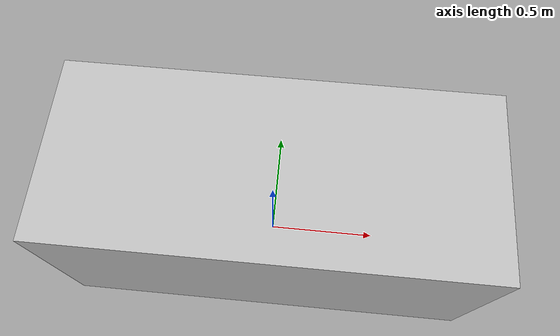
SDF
<?xml version="1.0"?>
<sdf version="1.6">
  <model name="rwc2013/kitchen_table">
    <link name="1_link">
      <collision name="1_col">
        <geometry>
          <box>
            <size>1.8 0.78 0.76</size>
          </box>
        </geometry>
      </collision>
      <visual name="1_vis">
        <geometry>
          <box>
            <size>1.8 0.78 0.76</size>
          </box>
        </geometry>
        <material>
          <ambient>0.8 0.8 0.8 1</ambient>
        </material>
      </visual>
      <pose>0.0 0.0 0.38 0 0 0</pose>
    </link>
    <static>true</static>
  </model>
</sdf>
